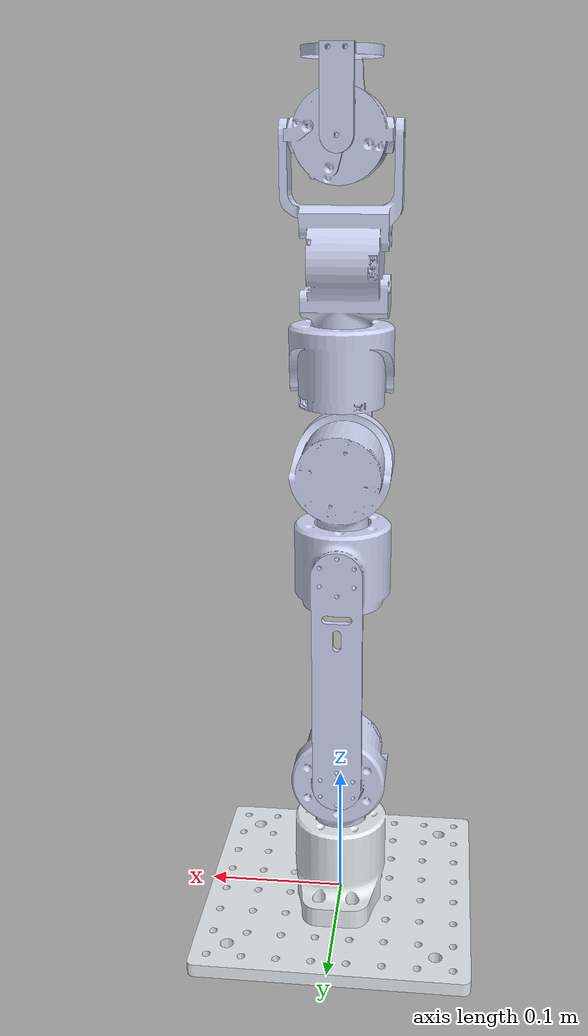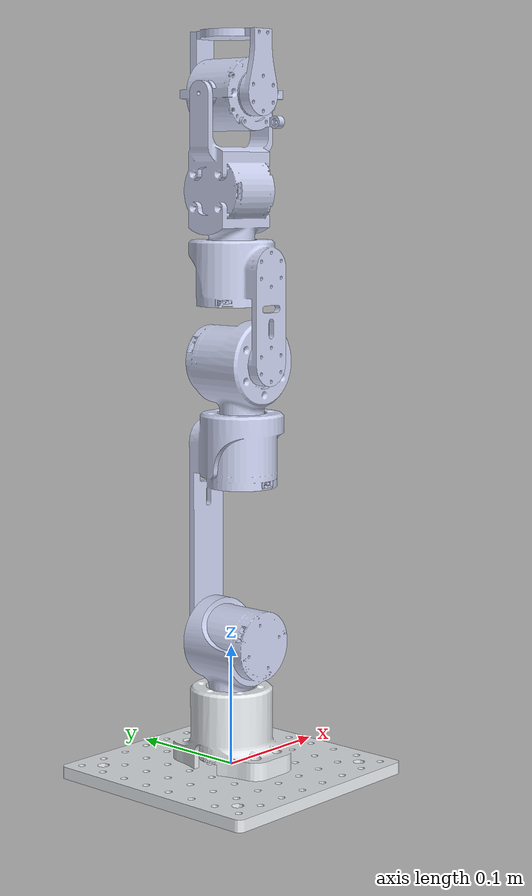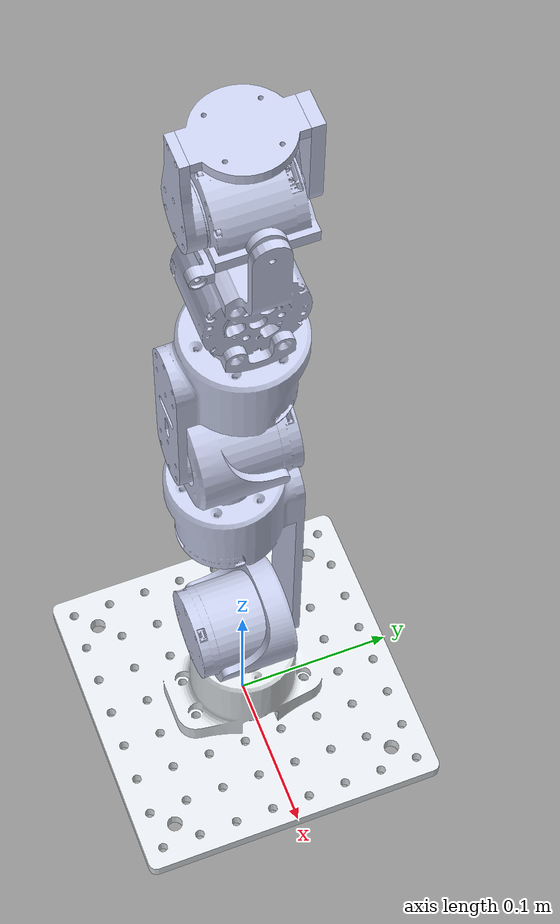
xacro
<?xml version="1.0"?>
<robot xmlns:xacro="http://www.ros.org/wiki/xacro" name="arm_moveit_config">
    <xacro:arg name="initial_positions_file" default="initial_positions.yaml" />

    <!-- Import arm_moveit_config urdf file -->
    <xacro:include filename="$(find arm_moveit_config)/urdf/arm_moveit_config.urdf.xacro" />

    <!-- Import control_xacro -->
    <xacro:include filename="arm_moveit_config.ros2_control.xacro" />

    <xacro:arm_moveit_config_ros2_control name="FakeSystem" initial_positions_file="$(arg initial_positions_file)"/>

</robot>

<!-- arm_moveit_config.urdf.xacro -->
<robot
  name="arm_moveit_config" xmlns:xacro="http://www.ros.org/wiki/xacro" >
  <link
    name="base_link">
    <inertial>
      <origin
        xyz="1.82408475740692E-07 3.51716014116571E-06 0.00902025307315796"
        rpy="0 0 0" />
      <mass
        value="0.60011276629095" />
      <inertia
        ixx="0.00142271929258347"
        ixy="-1.84401120983585E-08"
        ixz="2.64639323591038E-09"
        iyy="0.00138396714319161"
        iyz="-9.69141190431636E-08"
        izz="0.00267251954660065" />
    </inertial>
    <visual>
      <origin
        xyz="0 0 0"
        rpy="0 0 0" />
      <geometry>
        <mesh
          filename="package://arm_moveit_config/meshes/base_link.STL" />
      </geometry>
      <material
        name="">
        <color
          rgba="0.894117647058823 0.913725490196078 0.929411764705882 1" />
      </material>
    </visual>
    <collision>
      <origin
        xyz="0 0 0"
        rpy="0 0 0" />
      <geometry>
        <mesh
          filename="package://arm_moveit_config/meshes/base_link.STL" />
      </geometry>
    </collision>
  </link>
  <link
    name="j1_Link">
    <inertial>
      <origin
        xyz="-2.25326300728329E-05 -0.00342275072724877 0.0379899100804355"
        rpy="0 0 0" />
      <mass
        value="0.178697895382468" />
      <inertia
        ixx="7.96290461236134E-05"
        ixy="-2.55980621473893E-08"
        ixz="2.94304187302059E-08"
        iyy="9.47363858187913E-05"
        iyz="-6.46778588079751E-06"
        izz="7.8156443139259E-05" />
    </inertial>
    <visual>
      <origin
        xyz="0 0 0"
        rpy="0 0 0" />
      <geometry>
        <mesh
          filename="package://arm_moveit_config/meshes/j1_Link.STL" />
      </geometry>
      <material
        name="">
        <color
          rgba="0.792156862745098 0.819607843137255 0.933333333333333 1" />
      </material>
    </visual>
    <collision>
      <origin
        xyz="0 0 0"
        rpy="0 0 0" />
      <geometry>
        <mesh
          filename="package://arm_moveit_config/meshes/j1_Link.STL" />
      </geometry>
    </collision>
  </link>
  <joint
    name="joint1"
    type="revolute">
    <origin
      xyz="0 0 0.06325"
      rpy="0 0 0" />
    <parent
      link="base_link" />
    <child
      link="j1_Link" />
    <axis
      xyz="0 0 1" />
    <limit
      lower="-3.14"
      upper="3.14"
      effort="0"
      velocity="0" />
  </joint>
  <link
    name="j2_Link">
    <inertial>
      <origin
        xyz="-0.00135368470830714 -0.0327452686736335 0.145506466953471"
        rpy="0 0 0" />
      <mass
        value="0.211213463648386" />
      <inertia
        ixx="0.000200708429393069"
        ixy="1.90332013937878E-08"
        ixz="-5.59683345647393E-08"
        iyy="0.000205676730407957"
        iyz="5.15467557655524E-06"
        izz="9.53384585245288E-05" />
    </inertial>
    <visual>
      <origin
        xyz="0 0 0"
        rpy="0 0 0" />
      <geometry>
        <mesh
          filename="package://arm_moveit_config/meshes/j2_Link.STL" />
      </geometry>
      <material
        name="">
        <color
          rgba="0.792156862745098 0.819607843137255 0.933333333333333 1" />
      </material>
    </visual>
    <collision>
      <origin
        xyz="0 0 0"
        rpy="0 0 0" />
      <geometry>
        <mesh
          filename="package://arm_moveit_config/meshes/j2_Link.STL" />
      </geometry>
    </collision>
  </link>
  <joint
    name="joint2"
    type="revolute">
    <origin
      xyz="0.00131462848711156 0.0307218850468486 0.0419000000004602"
      rpy="0 0 0" />
    <parent
      link="j1_Link" />
    <child
      link="j2_Link" />
    <axis
      xyz="0 1 0" />
    <limit
      lower="-1.5708"
      upper="1.5708"
      effort="0"
      velocity="0" />
  </joint>
  <link
    name="j3_Link">
    <inertial>
      <origin
        xyz="-2.31977252411891E-05 0.00291620685835801 0.0400293534088073"
        rpy="0 0 0" />
      <mass
        value="0.179709253046595" />
      <inertia
        ixx="8.11995141559787E-05"
        ixy="3.02662559213173E-08"
        ixz="1.22308541818743E-08"
        iyy="9.67926159536255E-05"
        iyz="6.76084403303746E-06"
        izz="7.86977187926718E-05" />
    </inertial>
    <visual>
      <origin
        xyz="0 0 0"
        rpy="0 0 0" />
      <geometry>
        <mesh
          filename="package://arm_moveit_config/meshes/j3_Link.STL" />
      </geometry>
      <material
        name="">
        <color
          rgba="0.792156862745098 0.819607843137255 0.933333333333333 1" />
      </material>
    </visual>
    <collision>
      <origin
        xyz="0 0 0"
        rpy="0 0 0" />
      <geometry>
        <mesh
          filename="package://arm_moveit_config/meshes/j3_Link.STL" />
      </geometry>
    </collision>
  </link>
  <joint
    name="joint3"
    type="revolute">
    <origin
      xyz="-0.0013146289850085 -0.0418718855621362 0.18579999999954"
      rpy="0 0 0" />
    <parent
      link="j2_Link" />
    <child
      link="j3_Link" />
    <axis
      xyz="0 0 -1" />
    <limit
      lower="-3.14"
      upper="3.14"
      effort="0"
      velocity="0" />
  </joint>
  <link
    name="j4_Link">
    <inertial>
      <origin
        xyz="2.8138845573622E-06 0.0348796386523789 0.0675512627754727"
        rpy="0 0 0" />
      <mass
        value="0.177550051277323" />
      <inertia
        ixx="8.32581338510292E-05"
        ixy="9.65461937237846E-08"
        ixz="-5.50722185618927E-09"
        iyy="8.77595407624007E-05"
        iyz="-4.80729587152776E-06"
        izz="8.41215441102613E-05" />
    </inertial>
    <visual>
      <origin
        xyz="0 0 0"
        rpy="0 0 0" />
      <geometry>
        <mesh
          filename="package://arm_moveit_config/meshes/j4_Link.STL" />
      </geometry>
      <material
        name="">
        <color
          rgba="0.792156862745098 0.819607843137255 0.933333333333333 1" />
      </material>
    </visual>
    <collision>
      <origin
        xyz="0 0 0"
        rpy="0 0 0" />
      <geometry>
        <mesh
          filename="package://arm_moveit_config/meshes/j4_Link.STL" />
      </geometry>
    </collision>
  </link>
  <joint
    name="joint4"
    type="revolute">
    <origin
      xyz="0 -0.0312499999913049 0.0442000000000001"
      rpy="0 0 0" />
    <parent
      link="j3_Link" />
    <child
      link="j4_Link" />
    <axis
      xyz="0 -1 0" />
    <limit
      lower="-1.5708"
      upper="1.5708"
      effort="0"
      velocity="0" />
  </joint>
  <link
    name="j5_Link">
    <inertial>
      <origin
        xyz="-0.00184970905153788 2.16860324166526E-06 0.0451788162709378"
        rpy="0 0 0" />
      <mass
        value="0.157116859389308" />
      <inertia
        ixx="5.66350767579387E-05"
        ixy="-7.52983881241509E-10"
        ixz="-6.07294422055277E-07"
        iyy="6.6160220625435E-05"
        iyz="-2.69360080465267E-08"
        izz="6.2338022622218E-05" />
    </inertial>
    <visual>
      <origin
        xyz="0 0 0"
        rpy="0 0 0" />
      <geometry>
        <mesh
          filename="package://arm_moveit_config/meshes/j5_Link.STL" />
      </geometry>
      <material
        name="">
        <color
          rgba="0.792156862745098 0.819607843137255 0.933333333333333 1" />
      </material>
    </visual>
    <collision>
      <origin
        xyz="0 0 0"
        rpy="0 0 0" />
      <geometry>
        <mesh
          filename="package://arm_moveit_config/meshes/j5_Link.STL" />
      </geometry>
    </collision>
  </link>
  <joint
    name="joint5"
    type="revolute">
    <origin
      xyz="0 0.0424000000001972 0.0937500000000001"
      rpy="0 0 0" />
    <parent
      link="j4_Link" />
    <child
      link="j5_Link" />
    <axis
      xyz="0 0 -1" />
    <limit
      lower="-3.14"
      upper="3.14"
      effort="0"
      velocity="0" />
  </joint>
  <link
    name="j6_Link">
    <inertial>
      <origin
        xyz="-0.0364705248387309 -0.00117965044201978 -0.000196659498385099"
        rpy="0 0 0" />
      <mass
        value="0.110800280960581" />
      <inertia
        ixx="3.15911686560786E-05"
        ixy="6.05086670240964E-08"
        ixz="8.86134513055527E-08"
        iyy="4.27157351222461E-05"
        iyz="-1.80740488192061E-08"
        izz="3.13351266815023E-05" />
    </inertial>
    <visual>
      <origin
        xyz="0 0 0"
        rpy="0 0 0" />
      <geometry>
        <mesh
          filename="package://arm_moveit_config/meshes/j6_Link.STL" />
      </geometry>
      <material
        name="">
        <color
          rgba="0.792156862745098 0.819607843137255 0.933333333333333 1" />
      </material>
    </visual>
    <collision>
      <origin
        xyz="0 0 0"
        rpy="0 0 0" />
      <geometry>
        <mesh
          filename="package://arm_moveit_config/meshes/j6_Link.STL" />
      </geometry>
    </collision>
  </link>
  <joint
    name="joint6"
    type="revolute">
    <origin
      xyz="0.0365000000003447 0 0.118365606252056"
      rpy="0 0 0" />
    <parent
      link="j5_Link" />
    <child
      link="j6_Link" />
    <axis
      xyz="1 0 0" />
    <limit
      lower="-0.48869"
      upper="0.2618"
      effort="0"
      velocity="0" />
  </joint>
  <link
    name="j7_Link">
    <inertial>
      <origin
        xyz="-1.00902402984382E-06 0.027078472455816 0.0139616017507818"
        rpy="0 0 0" />
      <mass
        value="0.0203505291651144" />
      <inertia
        ixx="5.76506430448727E-06"
        ixy="1.55863612965333E-11"
        ixz="-1.90910700620933E-10"
        iyy="6.74337060270656E-06"
        iyz="2.19860593205127E-07"
        izz="1.23826793973668E-06" />
    </inertial>
    <visual>
      <origin
        xyz="0 0 0"
        rpy="0 0 0" />
      <geometry>
        <mesh
          filename="package://arm_moveit_config/meshes/j7_Link.STL" />
      </geometry>
      <material
        name="">
        <color
          rgba="0.792156862745098 0.819607843137255 0.933333333333333 1" />
      </material>
    </visual>
    <collision>
      <origin
        xyz="0 0 0"
        rpy="0 0 0" />
      <geometry>
        <mesh
          filename="package://arm_moveit_config/meshes/j7_Link.STL" />
      </geometry>
    </collision>
  </link>
  <joint
    name="joint7"
    type="revolute">
    <origin
      xyz="-0.0364999999999951 -0.0335000000000003 0"
      rpy="0 0 0" />
    <parent
      link="j6_Link" />
    <child
      link="j7_Link" />
    <axis
      xyz="0 -1 0" />
    <limit
      lower="-1.5708"
      upper="1.5708"
      effort="0"
      velocity="0" />
  </joint>
  <link
    name="end_Link">
    <inertial>
      <origin
        xyz="-9.71445146547012E-17 7.28583859910259E-17 -0.00298069637661413"
        rpy="0 0 0" />
      <mass
        value="0.0119347262769104" />
      <inertia
        ixx="2.18134184265499E-06"
        ixy="-1.55602316956672E-23"
        ixz="3.06706913411955E-25"
        iyy="1.85967097750026E-06"
        iyz="-1.53591707536522E-20"
        izz="3.96776960696623E-06" />
    </inertial>
    <visual>
      <origin
        xyz="0 0 0"
        rpy="0 0 0" />
      <geometry>
        <mesh
          filename="package://arm_moveit_config/meshes/end_Link.STL" />
      </geometry>
      <material
        name="">
        <color
          rgba="0.792156862745098 0.819607843137255 0.933333333333333 1" />
      </material>
    </visual>
    <collision>
      <origin
        xyz="0 0 0"
        rpy="0 0 0" />
      <geometry>
        <mesh
          filename="package://arm_moveit_config/meshes/end_Link.STL" />
      </geometry>
    </collision>
  </link>
  <joint
    name="end_effector"
    type="fixed">
    <origin
      xyz="0 0.0335 0.05"
      rpy="0 0 0" />
    <parent
      link="j7_Link" />
    <child
      link="end_Link" />
    <axis
      xyz="0 0 0" />
  </joint>
</robot>
